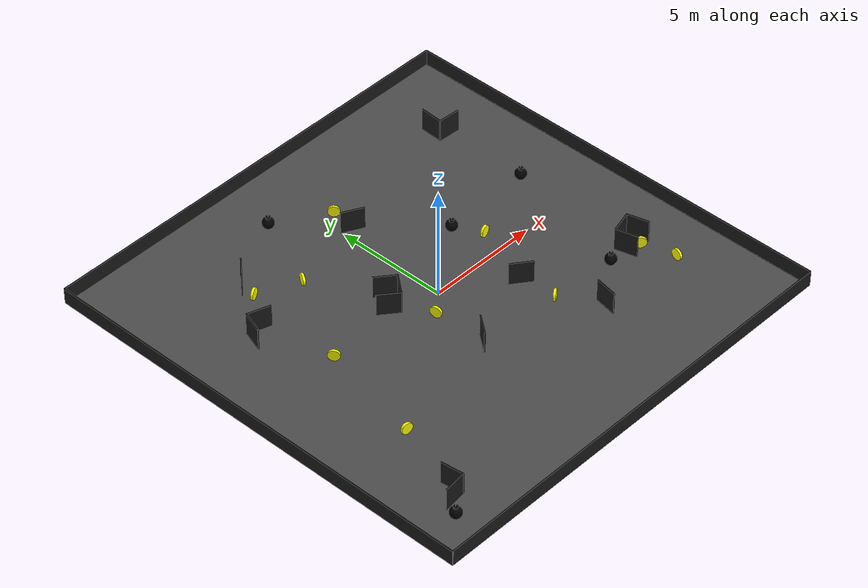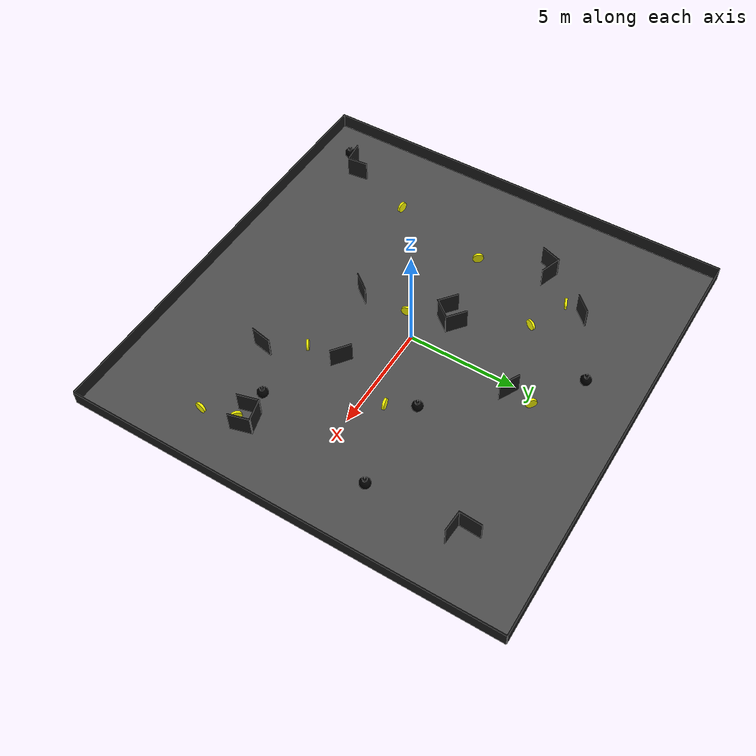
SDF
<sdf version="1.6">
 <world name="default">
  <model name="labrob_ground">
   <static>1</static>
   <link name="link">
    <collision name="collision">
     <geometry><plane><normal>0 0 1</normal><size>20 20</size></plane></geometry>
     <surface><contact><collide_bitmask>2</collide_bitmask></contact></surface>
    </collision>
    <visual name="visual">
     <cast_shadows>0</cast_shadows>
     <geometry><plane><normal>0 0 1</normal><size>20 20</size></plane></geometry>
     <material>
      <script>
       <uri>model://labrob_ground/materials/scripts/</uri>
       <uri>model://labrob_ground/materials/textures/</uri>
       <name>Labrob/AsphaltGround</name>
      </script>
     </material>
    </visual>
   </link>
  </model>
  <light name="sun" type="directional">
   <pose>0 0 10 0 -0 0</pose>
   <diffuse>0.8 0.8 0.8 1</diffuse>
   <specular>0.1 0.1 0.1 1</specular>
   <attenuation>
    <range>1000</range>
    <constant>0.9</constant>
    <linear>0.01</linear>
    <quadratic>0.001</quadratic>
   </attenuation>
   <direction>-0.5 0.5 -1</direction>
  </light>
  <model name="borders">
   <static>1</static>
   <link name="chassis_pos_x">
    <pose>10 0 0.35 0 -0 1.57079</pose>
    <collision name="collision_pos_x"><geometry><box><size>20 0.05 0.7</size></box></geometry></collision>
    <visual name="visual">
     <geometry><box><size>20 0.05 0.7</size></box></geometry>
     <material>
      <ambient>0.1 0.1 0.1 1</ambient>
      <diffuse>0.1 0.1 0.1 1</diffuse>
      <specular>0.1 0.1 0.1 1</specular>
      <emissive>0 0 0 0</emissive>
     </material>
    </visual>
    <sensor name="contact_sensor_1" type="contact">
     <plugin name="my_contact_plugin" filename="libgazebo_ros_bumper.so">
      <bumperTopicName>border_bumper</bumperTopicName>
      <frameName>world</frameName>
     </plugin>
     <contact><collision>collision_pos_x</collision><topic>__default_topic__</topic></contact>
    </sensor>
   </link>
   <link name="chassis_neg_x">
    <pose>-10 0 0.35 0 -0 1.57079</pose>
    <collision name="collision_neg_x"><geometry><box><size>20 0.05 0.7</size></box></geometry></collision>
    <visual name="visual">
     <geometry><box><size>20 0.05 0.7</size></box></geometry>
     <material>
      <ambient>0.1 0.1 0.1 1</ambient>
      <diffuse>0.1 0.1 0.1 1</diffuse>
      <specular>0.1 0.1 0.1 1</specular>
      <emissive>0 0 0 0</emissive>
     </material>
    </visual>
    <sensor name="contact_sensor_2" type="contact">
     <plugin name="my_contact_plugin" filename="libgazebo_ros_bumper.so">
      <bumperTopicName>border_bumper</bumperTopicName>
      <frameName>world</frameName>
     </plugin>
     <contact><collision>collision_neg_x</collision><topic>__default_topic__</topic></contact>
    </sensor>
   </link>
   <link name="chassis_pos_y">
    <pose>0 10 0.35 0 -0 0</pose>
    <collision name="collision_pos_y"><geometry><box><size>20 0.05 0.7</size></box></geometry></collision>
    <visual name="visual">
     <geometry><box><size>20 0.05 0.7</size></box></geometry>
     <material>
      <ambient>0.1 0.1 0.1 1</ambient>
      <diffuse>0.1 0.1 0.1 1</diffuse>
      <specular>0.1 0.1 0.1 1</specular>
      <emissive>0 0 0 0</emissive>
     </material>
    </visual>
    <sensor name="contact_sensor_3" type="contact">
     <plugin name="my_contact_plugin" filename="libgazebo_ros_bumper.so">
      <bumperTopicName>border_bumper</bumperTopicName>
      <frameName>world</frameName>
     </plugin>
     <contact><collision>collision_pos_y</collision><topic>__default_topic__</topic></contact>
    </sensor>
   </link>
   <link name="chassis_neg_y">
    <pose>0 -10 0.35 0 -0 0</pose>
    <collision name="collision_neg_y"><geometry><box><size>20 0.05 0.7</size></box></geometry></collision>
    <visual name="visual">
     <geometry><box><size>20 0.05 0.7</size></box></geometry>
     <material>
      <ambient>0.1 0.1 0.1 1</ambient>
      <diffuse>0.1 0.1 0.1 1</diffuse>
      <specular>0.1 0.1 0.1 1</specular>
      <emissive>0 0 0 0</emissive>
     </material>
    </visual>
    <sensor name="contact_sensor_4" type="contact">
     <plugin name="my_contact_plugin" filename="libgazebo_ros_bumper.so">
      <bumperTopicName>border_bumper</bumperTopicName>
      <frameName>world</frameName>
     </plugin>
     <contact><collision>collision_neg_y</collision><topic>__default_topic__</topic></contact>
    </sensor>
   </link>
  </model>
  <gravity>0 0 -9.8</gravity>
  <magnetic_field>6e-06 2.3e-05 -4.2e-05</magnetic_field>
  <atmosphere type="adiabatic"/>
  <physics name="default_physics" default="0" type="ode">
   <max_step_size>0.001</max_step_size>
   <real_time_factor>1</real_time_factor>
   <real_time_update_rate>1000</real_time_update_rate>
  </physics>
  <scene><ambient>0.4 0.4 0.4 1</ambient><background>0.7 0.7 0.7 1</background><shadows>1</shadows></scene>
  <spherical_coordinates>
   <surface_model>EARTH_WGS84</surface_model>
   <latitude_deg>0</latitude_deg>
   <longitude_deg>0</longitude_deg>
   <elevation>0</elevation>
   <heading_deg>0</heading_deg>
  </spherical_coordinates>
  <model name="coin_0">
   <link name="chassis">
    <pose>0 0 0.26 0 -0 0</pose>
    <collision name="box_collision">
     <geometry><sphere><radius>0.25</radius></sphere></geometry>
     <surface>
      <contact><collide_bitmask>1</collide_bitmask><ode><min_depth>10</min_depth><kp>1</kp></ode></contact>
     </surface>
    </collision>
    <visual name="visual">
     <pose>0 0 0 0 1.57 0</pose>
     <geometry><cylinder><radius>0.25</radius><length>0.1</length></cylinder></geometry>
     <material>
      <ambient>1 1 0 1</ambient>
      <diffuse>1 1 0 1</diffuse>
      <specular>0.1 0.1 0.1 1</specular>
      <emissive>0 0 0 0</emissive>
     </material>
    </visual>
    <sensor name="contact_sensor_1" type="contact">
     <plugin name="my_contact_plugin" filename="libgazebo_ros_bumper.so">
      <bumperTopicName>coin_bumper</bumperTopicName>
      <frameName>world</frameName>
     </plugin>
     <contact><collision>box_collision</collision><topic>__default_topic__</topic></contact>
    </sensor>
    <inertial>
     <inertia><ixx>1</ixx><ixy>0</ixy><ixz>0</ixz><iyy>1</iyy><iyz>0</iyz><izz>1</izz></inertia>
     <mass>1</mass>
    </inertial>
   </link>
   <joint name="coin_hinge" type="revolute">
    <pose>0 0 0.26 0 -0 0</pose>
    <child>chassis</child>
    <parent>world</parent>
    <axis>
     <xyz>0 0 1</xyz>
     <use_parent_model_frame>1</use_parent_model_frame>
     <limit><lower>-1e+16</lower><upper>1e+16</upper></limit>
     <dynamics><spring_reference>0</spring_reference><spring_stiffness>0</spring_stiffness></dynamics>
    </axis>
   </joint>
   <pose>2.77872 -3.45118 0 0 0 -1.0037</pose>
  </model>
  <model name="coin_1">
   <link name="chassis">
    <pose>0 0 0.26 0 -0 0</pose>
    <collision name="box_collision">
     <geometry><sphere><radius>0.25</radius></sphere></geometry>
     <surface>
      <contact><collide_bitmask>1</collide_bitmask><ode><min_depth>10</min_depth><kp>1</kp></ode></contact>
     </surface>
    </collision>
    <visual name="visual">
     <pose>0 0 0 0 1.57 0</pose>
     <geometry><cylinder><radius>0.25</radius><length>0.1</length></cylinder></geometry>
     <material>
      <ambient>1 1 0 1</ambient>
      <diffuse>1 1 0 1</diffuse>
      <specular>0.1 0.1 0.1 1</specular>
      <emissive>0 0 0 0</emissive>
     </material>
    </visual>
    <sensor name="contact_sensor_1" type="contact">
     <plugin name="my_contact_plugin" filename="libgazebo_ros_bumper.so">
      <bumperTopicName>coin_bumper</bumperTopicName>
      <frameName>world</frameName>
     </plugin>
     <contact><collision>box_collision</collision><topic>__default_topic__</topic></contact>
    </sensor>
    <inertial>
     <inertia><ixx>1</ixx><ixy>0</ixy><ixz>0</ixz><iyy>1</iyy><iyz>0</iyz><izz>1</izz></inertia>
     <mass>1</mass>
    </inertial>
   </link>
   <joint name="coin_hinge" type="revolute">
    <pose>0 0 0.26 0 -0 0</pose>
    <child>chassis</child>
    <parent>world</parent>
    <axis>
     <xyz>0 0 1</xyz>
     <use_parent_model_frame>1</use_parent_model_frame>
     <limit><lower>-1e+16</lower><upper>1e+16</upper></limit>
     <dynamics><spring_reference>0</spring_reference><spring_stiffness>0</spring_stiffness></dynamics>
    </axis>
   </joint>
   <pose>7.6966 -5.34516 0 0 0 -0.137868</pose>
  </model>
  <model name="coin_2">
   <link name="chassis">
    <pose>0 0 0.26 0 -0 0</pose>
    <collision name="box_collision">
     <geometry><sphere><radius>0.25</radius></sphere></geometry>
     <surface>
      <contact><collide_bitmask>1</collide_bitmask><ode><min_depth>10</min_depth><kp>1</kp></ode></contact>
     </surface>
    </collision>
    <visual name="visual">
     <pose>0 0 0 0 1.57 0</pose>
     <geometry><cylinder><radius>0.25</radius><length>0.1</length></cylinder></geometry>
     <material>
      <ambient>1 1 0 1</ambient>
      <diffuse>1 1 0 1</diffuse>
      <specular>0.1 0.1 0.1 1</specular>
      <emissive>0 0 0 0</emissive>
     </material>
    </visual>
    <sensor name="contact_sensor_1" type="contact">
     <plugin name="my_contact_plugin" filename="libgazebo_ros_bumper.so">
      <bumperTopicName>coin_bumper</bumperTopicName>
      <frameName>world</frameName>
     </plugin>
     <contact><collision>box_collision</collision><topic>__default_topic__</topic></contact>
    </sensor>
    <inertial>
     <inertia><ixx>1</ixx><ixy>0</ixy><ixz>0</ixz><iyy>1</iyy><iyz>0</iyz><izz>1</izz></inertia>
     <mass>1</mass>
    </inertial>
   </link>
   <joint name="coin_hinge" type="revolute">
    <pose>0 0 0.26 0 -0 0</pose>
    <child>chassis</child>
    <parent>world</parent>
    <axis>
     <xyz>0 0 1</xyz>
     <use_parent_model_frame>1</use_parent_model_frame>
     <limit><lower>-1e+16</lower><upper>1e+16</upper></limit>
     <dynamics><spring_reference>0</spring_reference><spring_stiffness>0</spring_stiffness></dynamics>
    </axis>
   </joint>
   <pose>7.27959 -3.86505 0 0 0 -2.26493</pose>
  </model>
  <model name="coin_3">
   <link name="chassis">
    <pose>0 0 0.26 0 -0 0</pose>
    <collision name="box_collision">
     <geometry><sphere><radius>0.25</radius></sphere></geometry>
     <surface>
      <contact><collide_bitmask>1</collide_bitmask><ode><min_depth>10</min_depth><kp>1</kp></ode></contact>
     </surface>
    </collision>
    <visual name="visual">
     <pose>0 0 0 0 1.57 0</pose>
     <geometry><cylinder><radius>0.25</radius><length>0.1</length></cylinder></geometry>
     <material>
      <ambient>1 1 0 1</ambient>
      <diffuse>1 1 0 1</diffuse>
      <specular>0.1 0.1 0.1 1</specular>
      <emissive>0 0 0 0</emissive>
     </material>
    </visual>
    <sensor name="contact_sensor_1" type="contact">
     <plugin name="my_contact_plugin" filename="libgazebo_ros_bumper.so">
      <bumperTopicName>coin_bumper</bumperTopicName>
      <frameName>world</frameName>
     </plugin>
     <contact><collision>box_collision</collision><topic>__default_topic__</topic></contact>
    </sensor>
    <inertial>
     <inertia><ixx>1</ixx><ixy>0</ixy><ixz>0</ixz><iyy>1</iyy><iyz>0</iyz><izz>1</izz></inertia>
     <mass>1</mass>
    </inertial>
   </link>
   <joint name="coin_hinge" type="revolute">
    <pose>0 0 0.26 0 -0 0</pose>
    <child>chassis</child>
    <parent>world</parent>
    <axis>
     <xyz>0 0 1</xyz>
     <use_parent_model_frame>1</use_parent_model_frame>
     <limit><lower>-1e+16</lower><upper>1e+16</upper></limit>
     <dynamics><spring_reference>0</spring_reference><spring_stiffness>0</spring_stiffness></dynamics>
    </axis>
   </joint>
   <pose>-1.01313 -0.821169 0 0 0 -2.88155</pose>
  </model>
  <model name="coin_4">
   <link name="chassis">
    <pose>0 0 0.26 0 -0 0</pose>
    <collision name="box_collision">
     <geometry><sphere><radius>0.25</radius></sphere></geometry>
     <surface>
      <contact><collide_bitmask>1</collide_bitmask><ode><min_depth>10</min_depth><kp>1</kp></ode></contact>
     </surface>
    </collision>
    <visual name="visual">
     <pose>0 0 0 0 1.57 0</pose>
     <geometry><cylinder><radius>0.25</radius><length>0.1</length></cylinder></geometry>
     <material>
      <ambient>1 1 0 1</ambient>
      <diffuse>1 1 0 1</diffuse>
      <specular>0.1 0.1 0.1 1</specular>
      <emissive>0 0 0 0</emissive>
     </material>
    </visual>
    <sensor name="contact_sensor_1" type="contact">
     <plugin name="my_contact_plugin" filename="libgazebo_ros_bumper.so">
      <bumperTopicName>coin_bumper</bumperTopicName>
      <frameName>world</frameName>
     </plugin>
     <contact><collision>box_collision</collision><topic>__default_topic__</topic></contact>
    </sensor>
    <inertial>
     <inertia><ixx>1</ixx><ixy>0</ixy><ixz>0</ixz><iyy>1</iyy><iyz>0</iyz><izz>1</izz></inertia>
     <mass>1</mass>
    </inertial>
   </link>
   <joint name="coin_hinge" type="revolute">
    <pose>0 0 0.26 0 -0 0</pose>
    <child>chassis</child>
    <parent>world</parent>
    <axis>
     <xyz>0 0 1</xyz>
     <use_parent_model_frame>1</use_parent_model_frame>
     <limit><lower>-1e+16</lower><upper>1e+16</upper></limit>
     <dynamics><spring_reference>0</spring_reference><spring_stiffness>0</spring_stiffness></dynamics>
    </axis>
   </joint>
   <pose>-6.31845 -4.31786 0 0 -0 1.39664</pose>
  </model>
  <model name="coin_5">
   <link name="chassis">
    <pose>0 0 0.26 0 -0 0</pose>
    <collision name="box_collision">
     <geometry><sphere><radius>0.25</radius></sphere></geometry>
     <surface>
      <contact><collide_bitmask>1</collide_bitmask><ode><min_depth>10</min_depth><kp>1</kp></ode></contact>
     </surface>
    </collision>
    <visual name="visual">
     <pose>0 0 0 0 1.57 0</pose>
     <geometry><cylinder><radius>0.25</radius><length>0.1</length></cylinder></geometry>
     <material>
      <ambient>1 1 0 1</ambient>
      <diffuse>1 1 0 1</diffuse>
      <specular>0.1 0.1 0.1 1</specular>
      <emissive>0 0 0 0</emissive>
     </material>
    </visual>
    <sensor name="contact_sensor_1" type="contact">
     <plugin name="my_contact_plugin" filename="libgazebo_ros_bumper.so">
      <bumperTopicName>coin_bumper</bumperTopicName>
      <frameName>world</frameName>
     </plugin>
     <contact><collision>box_collision</collision><topic>__default_topic__</topic></contact>
    </sensor>
    <inertial>
     <inertia><ixx>1</ixx><ixy>0</ixy><ixz>0</ixz><iyy>1</iyy><iyz>0</iyz><izz>1</izz></inertia>
     <mass>1</mass>
    </inertial>
   </link>
   <joint name="coin_hinge" type="revolute">
    <pose>0 0 0.26 0 -0 0</pose>
    <child>chassis</child>
    <parent>world</parent>
    <axis>
     <xyz>0 0 1</xyz>
     <use_parent_model_frame>1</use_parent_model_frame>
     <limit><lower>-1e+16</lower><upper>1e+16</upper></limit>
     <dynamics><spring_reference>0</spring_reference><spring_stiffness>0</spring_stiffness></dynamics>
    </axis>
   </joint>
   <pose>-4.97691 4.92097 0 0 0 -1.14791</pose>
  </model>
  <model name="coin_6">
   <link name="chassis">
    <pose>0 0 0.26 0 -0 0</pose>
    <collision name="box_collision">
     <geometry><sphere><radius>0.25</radius></sphere></geometry>
     <surface>
      <contact><collide_bitmask>1</collide_bitmask><ode><min_depth>10</min_depth><kp>1</kp></ode></contact>
     </surface>
    </collision>
    <visual name="visual">
     <pose>0 0 0 0 1.57 0</pose>
     <geometry><cylinder><radius>0.25</radius><length>0.1</length></cylinder></geometry>
     <material>
      <ambient>1 1 0 1</ambient>
      <diffuse>1 1 0 1</diffuse>
      <specular>0.1 0.1 0.1 1</specular>
      <emissive>0 0 0 0</emissive>
     </material>
    </visual>
    <sensor name="contact_sensor_1" type="contact">
     <plugin name="my_contact_plugin" filename="libgazebo_ros_bumper.so">
      <bumperTopicName>coin_bumper</bumperTopicName>
      <frameName>world</frameName>
     </plugin>
     <contact><collision>box_collision</collision><topic>__default_topic__</topic></contact>
    </sensor>
    <inertial>
     <inertia><ixx>1</ixx><ixy>0</ixy><ixz>0</ixz><iyy>1</iyy><iyz>0</iyz><izz>1</izz></inertia>
     <mass>1</mass>
    </inertial>
   </link>
   <joint name="coin_hinge" type="revolute">
    <pose>0 0 0.26 0 -0 0</pose>
    <child>chassis</child>
    <parent>world</parent>
    <axis>
     <xyz>0 0 1</xyz>
     <use_parent_model_frame>1</use_parent_model_frame>
     <limit><lower>-1e+16</lower><upper>1e+16</upper></limit>
     <dynamics><spring_reference>0</spring_reference><spring_stiffness>0</spring_stiffness></dynamics>
    </axis>
   </joint>
   <pose>-3.12605 4.15649 0 0 0 -0.482308</pose>
  </model>
  <model name="coin_7">
   <link name="chassis">
    <pose>0 0 0.26 0 -0 0</pose>
    <collision name="box_collision">
     <geometry><sphere><radius>0.25</radius></sphere></geometry>
     <surface>
      <contact><collide_bitmask>1</collide_bitmask><ode><min_depth>10</min_depth><kp>1</kp></ode></contact>
     </surface>
    </collision>
    <visual name="visual">
     <pose>0 0 0 0 1.57 0</pose>
     <geometry><cylinder><radius>0.25</radius><length>0.1</length></cylinder></geometry>
     <material>
      <ambient>1 1 0 1</ambient>
      <diffuse>1 1 0 1</diffuse>
      <specular>0.1 0.1 0.1 1</specular>
      <emissive>0 0 0 0</emissive>
     </material>
    </visual>
    <sensor name="contact_sensor_1" type="contact">
     <plugin name="my_contact_plugin" filename="libgazebo_ros_bumper.so">
      <bumperTopicName>coin_bumper</bumperTopicName>
      <frameName>world</frameName>
     </plugin>
     <contact><collision>box_collision</collision><topic>__default_topic__</topic></contact>
    </sensor>
    <inertial>
     <inertia><ixx>1</ixx><ixy>0</ixy><ixz>0</ixz><iyy>1</iyy><iyz>0</iyz><izz>1</izz></inertia>
     <mass>1</mass>
    </inertial>
   </link>
   <joint name="coin_hinge" type="revolute">
    <pose>0 0 0.26 0 -0 0</pose>
    <child>chassis</child>
    <parent>world</parent>
    <axis>
     <xyz>0 0 1</xyz>
     <use_parent_model_frame>1</use_parent_model_frame>
     <limit><lower>-1e+16</lower><upper>1e+16</upper></limit>
     <dynamics><spring_reference>0</spring_reference><spring_stiffness>0</spring_stiffness></dynamics>
    </axis>
   </joint>
   <pose>-5.34639 0.324996 0 0 0 -2.4923</pose>
  </model>
  <model name="coin_8">
   <link name="chassis">
    <pose>0 0 0.26 0 -0 0</pose>
    <collision name="box_collision">
     <geometry><sphere><radius>0.25</radius></sphere></geometry>
     <surface>
      <contact><collide_bitmask>1</collide_bitmask><ode><min_depth>10</min_depth><kp>1</kp></ode></contact>
     </surface>
    </collision>
    <visual name="visual">
     <pose>0 0 0 0 1.57 0</pose>
     <geometry><cylinder><radius>0.25</radius><length>0.1</length></cylinder></geometry>
     <material>
      <ambient>1 1 0 1</ambient>
      <diffuse>1 1 0 1</diffuse>
      <specular>0.1 0.1 0.1 1</specular>
      <emissive>0 0 0 0</emissive>
     </material>
    </visual>
    <sensor name="contact_sensor_1" type="contact">
     <plugin name="my_contact_plugin" filename="libgazebo_ros_bumper.so">
      <bumperTopicName>coin_bumper</bumperTopicName>
      <frameName>world</frameName>
     </plugin>
     <contact><collision>box_collision</collision><topic>__default_topic__</topic></contact>
    </sensor>
    <inertial>
     <inertia><ixx>1</ixx><ixy>0</ixy><ixz>0</ixz><iyy>1</iyy><iyz>0</iyz><izz>1</izz></inertia>
     <mass>1</mass>
    </inertial>
   </link>
   <joint name="coin_hinge" type="revolute">
    <pose>0 0 0.26 0 -0 0</pose>
    <child>chassis</child>
    <parent>world</parent>
    <axis>
     <xyz>0 0 1</xyz>
     <use_parent_model_frame>1</use_parent_model_frame>
     <limit><lower>-1e+16</lower><upper>1e+16</upper></limit>
     <dynamics><spring_reference>0</spring_reference><spring_stiffness>0</spring_stiffness></dynamics>
    </axis>
   </joint>
   <pose>3.66217 0.972881 0 0 -0 1.78089</pose>
  </model>
  <model name="bomb_1">
   <link name="chassis">
    <pose>0 0 0.25 0 -0 0</pose>
    <collision name="box_collision">
     <geometry><sphere><radius>0.25</radius></sphere></geometry>
     <surface>
      <contact><collide_bitmask>1</collide_bitmask><ode><min_depth>10</min_depth><kp>1</kp></ode></contact>
     </surface>
    </collision>
    <visual name="visual">
     <pose>0 0 0.2 0 -0 0</pose>
     <geometry><cylinder><radius>0.1</radius><length>0.2</length></cylinder></geometry>
     <material>
      <ambient>0 0 0 1</ambient>
      <diffuse>0 0 0 1</diffuse>
      <specular>0.1 0.1 0.1 1</specular>
      <emissive>0 0 0 0</emissive>
     </material>
    </visual>
    <visual name="visual2">
     <geometry><sphere><radius>0.25</radius></sphere></geometry>
     <material>
      <ambient>0 0 0 1</ambient>
      <diffuse>0 0 0 1</diffuse>
      <specular>0.1 0.1 0.1 1</specular>
      <emissive>0 0 0 0</emissive>
     </material>
    </visual>
    <visual name="visual3">
     <pose>0 0 0.3 0 -0 0</pose>
     <geometry><cylinder><radius>0.01</radius><length>0.2</length></cylinder></geometry>
     <material>
      <ambient>1 1 1 1</ambient>
      <diffuse>1 1 1 1</diffuse>
      <specular>0.1 0.1 0.1 1</specular>
      <emissive>0 0 0 0</emissive>
     </material>
    </visual>
    <sensor name="contact_sensor_1" type="contact">
     <plugin name="my_contact_plugin" filename="libgazebo_ros_bumper.so">
      <bumperTopicName>bomb_bumper</bumperTopicName>
      <frameName>world</frameName>
     </plugin>
     <contact><collision>box_collision</collision><topic>__default_topic__</topic></contact>
    </sensor>
    <inertial>
     <inertia><ixx>1</ixx><ixy>0</ixy><ixz>0</ixz><iyy>1</iyy><iyz>0</iyz><izz>1</izz></inertia>
     <mass>1</mass>
    </inertial>
   </link>
   <joint name="bomb_hinge" type="revolute">
    <pose>0 0 0.2 0 -0 0</pose>
    <child>chassis</child>
    <parent>world</parent>
    <axis>
     <xyz>0 0 0</xyz>
     <use_parent_model_frame>1</use_parent_model_frame>
     <limit><lower>-1e+16</lower><upper>1e+16</upper></limit>
     <dynamics><spring_reference>0</spring_reference><spring_stiffness>0</spring_stiffness></dynamics>
    </axis>
   </joint>
   <pose>-8.21329 -8.49243 0 0 -0 0</pose>
  </model>
  <model name="bomb_2">
   <link name="chassis">
    <pose>0 0 0.25 0 -0 0</pose>
    <collision name="box_collision">
     <geometry><sphere><radius>0.25</radius></sphere></geometry>
     <surface>
      <contact><collide_bitmask>1</collide_bitmask><ode><min_depth>10</min_depth><kp>1</kp></ode></contact>
     </surface>
    </collision>
    <visual name="visual">
     <pose>0 0 0.2 0 -0 0</pose>
     <geometry><cylinder><radius>0.1</radius><length>0.2</length></cylinder></geometry>
     <material>
      <ambient>0 0 0 1</ambient>
      <diffuse>0 0 0 1</diffuse>
      <specular>0.1 0.1 0.1 1</specular>
      <emissive>0 0 0 0</emissive>
     </material>
    </visual>
    <visual name="visual2">
     <geometry><sphere><radius>0.25</radius></sphere></geometry>
     <material>
      <ambient>0 0 0 1</ambient>
      <diffuse>0 0 0 1</diffuse>
      <specular>0.1 0.1 0.1 1</specular>
      <emissive>0 0 0 0</emissive>
     </material>
    </visual>
    <visual name="visual3">
     <pose>0 0 0.3 0 -0 0</pose>
     <geometry><cylinder><radius>0.01</radius><length>0.2</length></cylinder></geometry>
     <material>
      <ambient>1 1 1 1</ambient>
      <diffuse>1 1 1 1</diffuse>
      <specular>0.1 0.1 0.1 1</specular>
      <emissive>0 0 0 0</emissive>
     </material>
    </visual>
    <sensor name="contact_sensor_1" type="contact">
     <plugin name="my_contact_plugin" filename="libgazebo_ros_bumper.so">
      <bumperTopicName>bomb_bumper</bumperTopicName>
      <frameName>world</frameName>
     </plugin>
     <contact><collision>box_collision</collision><topic>__default_topic__</topic></contact>
    </sensor>
    <inertial>
     <inertia><ixx>1</ixx><ixy>0</ixy><ixz>0</ixz><iyy>1</iyy><iyz>0</iyz><izz>1</izz></inertia>
     <mass>1</mass>
    </inertial>
   </link>
   <joint name="bomb_hinge" type="revolute">
    <pose>0 0 0.2 0 -0 0</pose>
    <child>chassis</child>
    <parent>world</parent>
    <axis>
     <xyz>0 0 0</xyz>
     <use_parent_model_frame>1</use_parent_model_frame>
     <limit><lower>-1e+16</lower><upper>1e+16</upper></limit>
     <dynamics><spring_reference>0</spring_reference><spring_stiffness>0</spring_stiffness></dynamics>
    </axis>
   </joint>
   <pose>-1.69422 7.46276 0 0 -0 0</pose>
  </model>
  <model name="bomb_3">
   <link name="chassis">
    <pose>0 0 0.25 0 -0 0</pose>
    <collision name="box_collision">
     <geometry><sphere><radius>0.25</radius></sphere></geometry>
     <surface>
      <contact><collide_bitmask>1</collide_bitmask><ode><min_depth>10</min_depth><kp>1</kp></ode></contact>
     </surface>
    </collision>
    <visual name="visual">
     <pose>0 0 0.2 0 -0 0</pose>
     <geometry><cylinder><radius>0.1</radius><length>0.2</length></cylinder></geometry>
     <material>
      <ambient>0 0 0 1</ambient>
      <diffuse>0 0 0 1</diffuse>
      <specular>0.1 0.1 0.1 1</specular>
      <emissive>0 0 0 0</emissive>
     </material>
    </visual>
    <visual name="visual2">
     <geometry><sphere><radius>0.25</radius></sphere></geometry>
     <material>
      <ambient>0 0 0 1</ambient>
      <diffuse>0 0 0 1</diffuse>
      <specular>0.1 0.1 0.1 1</specular>
      <emissive>0 0 0 0</emissive>
     </material>
    </visual>
    <visual name="visual3">
     <pose>0 0 0.3 0 -0 0</pose>
     <geometry><cylinder><radius>0.01</radius><length>0.2</length></cylinder></geometry>
     <material>
      <ambient>1 1 1 1</ambient>
      <diffuse>1 1 1 1</diffuse>
      <specular>0.1 0.1 0.1 1</specular>
      <emissive>0 0 0 0</emissive>
     </material>
    </visual>
    <sensor name="contact_sensor_1" type="contact">
     <plugin name="my_contact_plugin" filename="libgazebo_ros_bumper.so">
      <bumperTopicName>bomb_bumper</bumperTopicName>
      <frameName>world</frameName>
     </plugin>
     <contact><collision>box_collision</collision><topic>__default_topic__</topic></contact>
    </sensor>
    <inertial>
     <inertia><ixx>1</ixx><ixy>0</ixy><ixz>0</ixz><iyy>1</iyy><iyz>0</iyz><izz>1</izz></inertia>
     <mass>1</mass>
    </inertial>
   </link>
   <joint name="bomb_hinge" type="revolute">
    <pose>0 0 0.2 0 -0 0</pose>
    <child>chassis</child>
    <parent>world</parent>
    <axis>
     <xyz>0 0 0</xyz>
     <use_parent_model_frame>1</use_parent_model_frame>
     <limit><lower>-1e+16</lower><upper>1e+16</upper></limit>
     <dynamics><spring_reference>0</spring_reference><spring_stiffness>0</spring_stiffness></dynamics>
    </axis>
   </joint>
   <pose>3.05113 2.15464 0 0 -0 0</pose>
  </model>
  <model name="wall_1_0">
   <static>1</static>
   <link name="chassis">
    <pose>0 0 0.5 0 -0 0</pose>
    <collision name="barrier_collision"><geometry><box><size>1 0.05 1</size></box></geometry></collision>
    <visual name="visual">
     <geometry><box><size>1 0.05 1</size></box></geometry>
     <material>
      <ambient>0.1 0.1 0.1 1</ambient>
      <diffuse>0.1 0.1 0.1 1</diffuse>
      <specular>0.1 0.1 0.1 1</specular>
      <emissive>0 0 0 0</emissive>
     </material>
    </visual>
    <sensor name="contact_sensor_1" type="contact">
     <plugin name="my_contact_plugin" filename="libgazebo_ros_bumper.so">
      <bumperTopicName>obstacle_bumper</bumperTopicName>
      <frameName>world</frameName>
     </plugin>
     <contact><collision>barrier_collision</collision><topic>__default_topic__</topic></contact>
    </sensor>
   </link>
   <pose>3.79005 -5.09205 0 0 0 -1.76104</pose>
  </model>
  <model name="wall_1_1">
   <static>1</static>
   <link name="chassis">
    <pose>0 0 0.5 0 -0 0</pose>
    <collision name="barrier_collision"><geometry><box><size>1 0.05 1</size></box></geometry></collision>
    <visual name="visual">
     <geometry><box><size>1 0.05 1</size></box></geometry>
     <material>
      <ambient>0.1 0.1 0.1 1</ambient>
      <diffuse>0.1 0.1 0.1 1</diffuse>
      <specular>0.1 0.1 0.1 1</specular>
      <emissive>0 0 0 0</emissive>
     </material>
    </visual>
    <sensor name="contact_sensor_1" type="contact">
     <plugin name="my_contact_plugin" filename="libgazebo_ros_bumper.so">
      <bumperTopicName>obstacle_bumper</bumperTopicName>
      <frameName>world</frameName>
     </plugin>
     <contact><collision>barrier_collision</collision><topic>__default_topic__</topic></contact>
    </sensor>
   </link>
   <pose>2.63147 -1.84331 0 0 0 -0.646003</pose>
  </model>
  <model name="wall_1_2">
   <static>1</static>
   <link name="chassis">
    <pose>0 0 0.5 0 -0 0</pose>
    <collision name="barrier_collision"><geometry><box><size>1 0.05 1</size></box></geometry></collision>
    <visual name="visual">
     <geometry><box><size>1 0.05 1</size></box></geometry>
     <material>
      <ambient>0.1 0.1 0.1 1</ambient>
      <diffuse>0.1 0.1 0.1 1</diffuse>
      <specular>0.1 0.1 0.1 1</specular>
      <emissive>0 0 0 0</emissive>
     </material>
    </visual>
    <sensor name="contact_sensor_1" type="contact">
     <plugin name="my_contact_plugin" filename="libgazebo_ros_bumper.so">
      <bumperTopicName>obstacle_bumper</bumperTopicName>
      <frameName>world</frameName>
     </plugin>
     <contact><collision>barrier_collision</collision><topic>__default_topic__</topic></contact>
    </sensor>
   </link>
   <pose>-0.904639 -3.08685 0 0 0 -2.23008</pose>
  </model>
  <model name="wall_2_0">
   <static>1</static>
   <link name="chassis">
    <pose>0 0 0.5 0 -0 0</pose>
    <collision name="barrier_collision"><geometry><box><size>1 0.05 1</size></box></geometry></collision>
    <visual name="visual">
     <geometry><box><size>1 0.05 1</size></box></geometry>
     <material>
      <ambient>0.1 0.1 0.1 1</ambient>
      <diffuse>0.1 0.1 0.1 1</diffuse>
      <specular>0.1 0.1 0.1 1</specular>
      <emissive>0 0 0 0</emissive>
     </material>
    </visual>
    <collision name="barrier_collision2">
     <pose>-0.475 0.525 0 0 -0 1.57</pose>
     <geometry><box><size>1 0.05 1</size></box></geometry>
    </collision>
    <visual name="visual2">
     <pose>-0.475 0.525 0 0 -0 1.57</pose>
     <geometry><box><size>1 0.05 1</size></box></geometry>
     <material>
      <ambient>0.1 0.1 0.1 1</ambient>
      <diffuse>0.1 0.1 0.1 1</diffuse>
      <specular>0.1 0.1 0.1 1</specular>
      <emissive>0 0 0 0</emissive>
     </material>
    </visual>
    <sensor name="contact_sensor_1" type="contact">
     <plugin name="my_contact_plugin" filename="libgazebo_ros_bumper.so">
      <bumperTopicName>obstacle_bumper</bumperTopicName>
      <frameName>world</frameName>
     </plugin>
     <contact><collision>barrier_collision</collision><topic>__default_topic__</topic></contact>
    </sensor>
    <sensor name="contact_sensor_2" type="contact">
     <plugin name="my_contact_plugin" filename="libgazebo_ros_bumper.so">
      <bumperTopicName>obstacle_bumper</bumperTopicName>
      <frameName>world</frameName>
     </plugin>
     <contact><collision>barrier_collision2</collision><topic>__default_topic__</topic></contact>
    </sensor>
   </link>
   <pose>-7.22309 -7.40471 0 0 -0 1.69029</pose>
  </model>
  <model name="wall_3_0">
   <static>1</static>
   <link name="chassis">
    <pose>0 0 0.5 0 -0 0</pose>
    <collision name="collision"><geometry><box><size>1 0.05 1</size></box></geometry></collision>
    <visual name="visual">
     <geometry><box><size>1 0.05 1</size></box></geometry>
     <material>
      <ambient>0.1 0.1 0.1 1</ambient>
      <diffuse>0.1 0.1 0.1 1</diffuse>
      <specular>0.1 0.1 0.1 1</specular>
      <emissive>0 0 0 0</emissive>
     </material>
    </visual>
    <collision name="collision2">
     <pose>-0.475 0.525 0 0 -0 1.57</pose>
     <geometry><box><size>1 0.05 1</size></box></geometry>
    </collision>
    <visual name="visual2">
     <pose>-0.475 0.525 0 0 -0 1.57</pose>
     <geometry><box><size>1 0.05 1</size></box></geometry>
     <material>
      <ambient>0.1 0.1 0.1 1</ambient>
      <diffuse>0.1 0.1 0.1 1</diffuse>
      <specular>0.1 0.1 0.1 1</specular>
      <emissive>0 0 0 0</emissive>
     </material>
    </visual>
    <collision name="collision3">
     <pose>0 1 0 0 -0 0</pose>
     <geometry><box><size>1 0.05 1</size></box></geometry>
    </collision>
    <visual name="visual3">
     <pose>0 1 0 0 -0 0</pose>
     <geometry><box><size>1 0.05 1</size></box></geometry>
     <material>
      <ambient>0.1 0.1 0.1 1</ambient>
      <diffuse>0.1 0.1 0.1 1</diffuse>
      <specular>0.1 0.1 0.1 1</specular>
      <emissive>0 0 0 0</emissive>
     </material>
    </visual>
    <sensor name="contact_sensor_1" type="contact">
     <plugin name="my_contact_plugin" filename="libgazebo_ros_bumper.so">
      <bumperTopicName>obstacle_bumper</bumperTopicName>
      <frameName>world</frameName>
     </plugin>
     <contact><collision>collision</collision><topic>__default_topic__</topic></contact>
    </sensor>
    <sensor name="contact_sensor_2" type="contact">
     <plugin name="my_contact_plugin" filename="libgazebo_ros_bumper.so">
      <bumperTopicName>obstacle_bumper</bumperTopicName>
      <frameName>world</frameName>
     </plugin>
     <contact><collision>collision2</collision><topic>__default_topic__</topic></contact>
    </sensor>
    <sensor name="contact_sensor_3" type="contact">
     <plugin name="my_contact_plugin" filename="libgazebo_ros_bumper.so">
      <bumperTopicName>obstacle_bumper</bumperTopicName>
      <frameName>world</frameName>
     </plugin>
     <contact><collision>collision3</collision><topic>__default_topic__</topic></contact>
    </sensor>
   </link>
   <pose>-1.4457 1.39996 0 0 -0 2.46904</pose>
  </model>
  <model name="wall_1_3">
   <static>1</static>
   <link name="chassis">
    <pose>0 0 0.5 0 -0 0</pose>
    <collision name="barrier_collision"><geometry><box><size>1 0.05 1</size></box></geometry></collision>
    <visual name="visual">
     <geometry><box><size>1 0.05 1</size></box></geometry>
     <material>
      <ambient>0.1 0.1 0.1 1</ambient>
      <diffuse>0.1 0.1 0.1 1</diffuse>
      <specular>0.1 0.1 0.1 1</specular>
      <emissive>0 0 0 0</emissive>
     </material>
    </visual>
    <sensor name="contact_sensor_1" type="contact">
     <plugin name="my_contact_plugin" filename="libgazebo_ros_bumper.so">
      <bumperTopicName>obstacle_bumper</bumperTopicName>
      <frameName>world</frameName>
     </plugin>
     <contact><collision>barrier_collision</collision><topic>__default_topic__</topic></contact>
    </sensor>
   </link>
   <pose>-4.8104 5.75511 0 0 0 -2.32741</pose>
  </model>
  <model name="wall_2_1">
   <static>1</static>
   <link name="chassis">
    <pose>0 0 0.5 0 -0 0</pose>
    <collision name="barrier_collision"><geometry><box><size>1 0.05 1</size></box></geometry></collision>
    <visual name="visual">
     <geometry><box><size>1 0.05 1</size></box></geometry>
     <material>
      <ambient>0.1 0.1 0.1 1</ambient>
      <diffuse>0.1 0.1 0.1 1</diffuse>
      <specular>0.1 0.1 0.1 1</specular>
      <emissive>0 0 0 0</emissive>
     </material>
    </visual>
    <collision name="barrier_collision2">
     <pose>-0.475 0.525 0 0 -0 1.57</pose>
     <geometry><box><size>1 0.05 1</size></box></geometry>
    </collision>
    <visual name="visual2">
     <pose>-0.475 0.525 0 0 -0 1.57</pose>
     <geometry><box><size>1 0.05 1</size></box></geometry>
     <material>
      <ambient>0.1 0.1 0.1 1</ambient>
      <diffuse>0.1 0.1 0.1 1</diffuse>
      <specular>0.1 0.1 0.1 1</specular>
      <emissive>0 0 0 0</emissive>
     </material>
    </visual>
    <sensor name="contact_sensor_1" type="contact">
     <plugin name="my_contact_plugin" filename="libgazebo_ros_bumper.so">
      <bumperTopicName>obstacle_bumper</bumperTopicName>
      <frameName>world</frameName>
     </plugin>
     <contact><collision>barrier_collision</collision><topic>__default_topic__</topic></contact>
    </sensor>
    <sensor name="contact_sensor_2" type="contact">
     <plugin name="my_contact_plugin" filename="libgazebo_ros_bumper.so">
      <bumperTopicName>obstacle_bumper</bumperTopicName>
      <frameName>world</frameName>
     </plugin>
     <contact><collision>barrier_collision2</collision><topic>__default_topic__</topic></contact>
    </sensor>
   </link>
   <pose>-6.67562 3.273 0 0 0 -1.89378</pose>
  </model>
  <model name="wall_3_1">
   <static>1</static>
   <link name="chassis">
    <pose>0 0 0.5 0 -0 0</pose>
    <collision name="collision"><geometry><box><size>1 0.05 1</size></box></geometry></collision>
    <visual name="visual">
     <geometry><box><size>1 0.05 1</size></box></geometry>
     <material>
      <ambient>0.1 0.1 0.1 1</ambient>
      <diffuse>0.1 0.1 0.1 1</diffuse>
      <specular>0.1 0.1 0.1 1</specular>
      <emissive>0 0 0 0</emissive>
     </material>
    </visual>
    <collision name="collision2">
     <pose>-0.475 0.525 0 0 -0 1.57</pose>
     <geometry><box><size>1 0.05 1</size></box></geometry>
    </collision>
    <visual name="visual2">
     <pose>-0.475 0.525 0 0 -0 1.57</pose>
     <geometry><box><size>1 0.05 1</size></box></geometry>
     <material>
      <ambient>0.1 0.1 0.1 1</ambient>
      <diffuse>0.1 0.1 0.1 1</diffuse>
      <specular>0.1 0.1 0.1 1</specular>
      <emissive>0 0 0 0</emissive>
     </material>
    </visual>
    <collision name="collision3">
     <pose>0 1 0 0 -0 0</pose>
     <geometry><box><size>1 0.05 1</size></box></geometry>
    </collision>
    <visual name="visual3">
     <pose>0 1 0 0 -0 0</pose>
     <geometry><box><size>1 0.05 1</size></box></geometry>
     <material>
      <ambient>0.1 0.1 0.1 1</ambient>
      <diffuse>0.1 0.1 0.1 1</diffuse>
      <specular>0.1 0.1 0.1 1</specular>
      <emissive>0 0 0 0</emissive>
     </material>
    </visual>
    <sensor name="contact_sensor_1" type="contact">
     <plugin name="my_contact_plugin" filename="libgazebo_ros_bumper.so">
      <bumperTopicName>obstacle_bumper</bumperTopicName>
      <frameName>world</frameName>
     </plugin>
     <contact><collision>collision</collision><topic>__default_topic__</topic></contact>
    </sensor>
    <sensor name="contact_sensor_2" type="contact">
     <plugin name="my_contact_plugin" filename="libgazebo_ros_bumper.so">
      <bumperTopicName>obstacle_bumper</bumperTopicName>
      <frameName>world</frameName>
     </plugin>
     <contact><collision>collision2</collision><topic>__default_topic__</topic></contact>
    </sensor>
    <sensor name="contact_sensor_3" type="contact">
     <plugin name="my_contact_plugin" filename="libgazebo_ros_bumper.so">
      <bumperTopicName>obstacle_bumper</bumperTopicName>
      <frameName>world</frameName>
     </plugin>
     <contact><collision>collision3</collision><topic>__default_topic__</topic></contact>
    </sensor>
   </link>
   <pose>6.66488 -3.64618 0 0 0 -1.30971</pose>
  </model>
  <model name="wall_1_4">
   <static>1</static>
   <link name="chassis">
    <pose>0 0 0.5 0 -0 0</pose>
    <collision name="barrier_collision"><geometry><box><size>1 0.05 1</size></box></geometry></collision>
    <visual name="visual">
     <geometry><box><size>1 0.05 1</size></box></geometry>
     <material>
      <ambient>0.1 0.1 0.1 1</ambient>
      <diffuse>0.1 0.1 0.1 1</diffuse>
      <specular>0.1 0.1 0.1 1</specular>
      <emissive>0 0 0 0</emissive>
     </material>
    </visual>
    <sensor name="contact_sensor_1" type="contact">
     <plugin name="my_contact_plugin" filename="libgazebo_ros_bumper.so">
      <bumperTopicName>obstacle_bumper</bumperTopicName>
      <frameName>world</frameName>
     </plugin>
     <contact><collision>barrier_collision</collision><topic>__default_topic__</topic></contact>
    </sensor>
   </link>
   <pose>0.453442 4.97414 0 0 0 -0.477856</pose>
  </model>
  <model name="wall_2_2">
   <static>1</static>
   <link name="chassis">
    <pose>0 0 0.5 0 -0 0</pose>
    <collision name="barrier_collision"><geometry><box><size>1 0.05 1</size></box></geometry></collision>
    <visual name="visual">
     <geometry><box><size>1 0.05 1</size></box></geometry>
     <material>
      <ambient>0.1 0.1 0.1 1</ambient>
      <diffuse>0.1 0.1 0.1 1</diffuse>
      <specular>0.1 0.1 0.1 1</specular>
      <emissive>0 0 0 0</emissive>
     </material>
    </visual>
    <collision name="barrier_collision2">
     <pose>-0.475 0.525 0 0 -0 1.57</pose>
     <geometry><box><size>1 0.05 1</size></box></geometry>
    </collision>
    <visual name="visual2">
     <pose>-0.475 0.525 0 0 -0 1.57</pose>
     <geometry><box><size>1 0.05 1</size></box></geometry>
     <material>
      <ambient>0.1 0.1 0.1 1</ambient>
      <diffuse>0.1 0.1 0.1 1</diffuse>
      <specular>0.1 0.1 0.1 1</specular>
      <emissive>0 0 0 0</emissive>
     </material>
    </visual>
    <sensor name="contact_sensor_1" type="contact">
     <plugin name="my_contact_plugin" filename="libgazebo_ros_bumper.so">
      <bumperTopicName>obstacle_bumper</bumperTopicName>
      <frameName>world</frameName>
     </plugin>
     <contact><collision>barrier_collision</collision><topic>__default_topic__</topic></contact>
    </sensor>
    <sensor name="contact_sensor_2" type="contact">
     <plugin name="my_contact_plugin" filename="libgazebo_ros_bumper.so">
      <bumperTopicName>obstacle_bumper</bumperTopicName>
      <frameName>world</frameName>
     </plugin>
     <contact><collision>barrier_collision2</collision><topic>__default_topic__</topic></contact>
    </sensor>
   </link>
   <pose>7.2396 6.18754 0 0 0 -0.055523</pose>
  </model>
  <model name="coin_9">
   <link name="chassis">
    <pose>0 0 0.26 0 -0 0</pose>
    <collision name="box_collision">
     <geometry><sphere><radius>0.25</radius></sphere></geometry>
     <surface>
      <contact><collide_bitmask>1</collide_bitmask><ode><min_depth>10</min_depth><kp>1</kp></ode></contact>
     </surface>
    </collision>
    <visual name="visual">
     <pose>0 0 0 0 1.57 0</pose>
     <geometry><cylinder><radius>0.25</radius><length>0.1</length></cylinder></geometry>
     <material>
      <ambient>1 1 0 1</ambient>
      <diffuse>1 1 0 1</diffuse>
      <specular>0.1 0.1 0.1 1</specular>
      <emissive>0 0 0 0</emissive>
     </material>
    </visual>
    <sensor name="contact_sensor_1" type="contact">
     <plugin name="my_contact_plugin" filename="libgazebo_ros_bumper.so">
      <bumperTopicName>coin_bumper</bumperTopicName>
      <frameName>world</frameName>
     </plugin>
     <contact><collision>box_collision</collision><topic>__default_topic__</topic></contact>
    </sensor>
    <inertial>
     <inertia><ixx>1</ixx><ixy>0</ixy><ixz>0</ixz><iyy>1</iyy><iyz>0</iyz><izz>1</izz></inertia>
     <mass>1</mass>
    </inertial>
   </link>
   <joint name="coin_hinge" type="revolute">
    <pose>0 0 0.26 0 -0 0</pose>
    <child>chassis</child>
    <parent>world</parent>
    <axis>
     <xyz>0 0 1</xyz>
     <use_parent_model_frame>1</use_parent_model_frame>
     <limit><lower>-1e+16</lower><upper>1e+16</upper></limit>
     <dynamics><spring_reference>0</spring_reference><spring_stiffness>0</spring_stiffness></dynamics>
    </axis>
   </joint>
   <pose>0.528364 6.06303 0 0 0 -2.39108</pose>
  </model>
  <model name="bomb_0">
   <link name="chassis">
    <pose>0 0 0.25 0 -0 0</pose>
    <collision name="box_collision">
     <geometry><sphere><radius>0.25</radius></sphere></geometry>
     <surface>
      <contact><collide_bitmask>1</collide_bitmask><ode><min_depth>10</min_depth><kp>1</kp></ode></contact>
     </surface>
    </collision>
    <visual name="visual">
     <pose>0 0 0.2 0 -0 0</pose>
     <geometry><cylinder><radius>0.1</radius><length>0.2</length></cylinder></geometry>
     <material>
      <ambient>0 0 0 1</ambient>
      <diffuse>0 0 0 1</diffuse>
      <specular>0.1 0.1 0.1 1</specular>
      <emissive>0 0 0 0</emissive>
     </material>
    </visual>
    <visual name="visual2">
     <geometry><sphere><radius>0.25</radius></sphere></geometry>
     <material>
      <ambient>0 0 0 1</ambient>
      <diffuse>0 0 0 1</diffuse>
      <specular>0.1 0.1 0.1 1</specular>
      <emissive>0 0 0 0</emissive>
     </material>
    </visual>
    <visual name="visual3">
     <pose>0 0 0.3 0 -0 0</pose>
     <geometry><cylinder><radius>0.01</radius><length>0.2</length></cylinder></geometry>
     <material>
      <ambient>1 1 1 1</ambient>
      <diffuse>1 1 1 1</diffuse>
      <specular>0.1 0.1 0.1 1</specular>
      <emissive>0 0 0 0</emissive>
     </material>
    </visual>
    <sensor name="contact_sensor_1" type="contact">
     <plugin name="my_contact_plugin" filename="libgazebo_ros_bumper.so">
      <bumperTopicName>bomb_bumper</bumperTopicName>
      <frameName>world</frameName>
     </plugin>
     <contact><collision>box_collision</collision><topic>__default_topic__</topic></contact>
    </sensor>
    <inertial>
     <inertia><ixx>1</ixx><ixy>0</ixy><ixz>0</ixz><iyy>1</iyy><iyz>0</iyz><izz>1</izz></inertia>
     <mass>1</mass>
    </inertial>
   </link>
   <joint name="bomb_hinge" type="revolute">
    <pose>0 0 0.2 0 -0 0</pose>
    <child>chassis</child>
    <parent>world</parent>
    <axis>
     <xyz>0 0 0</xyz>
     <use_parent_model_frame>1</use_parent_model_frame>
     <limit><lower>-1e+16</lower><upper>1e+16</upper></limit>
     <dynamics><spring_reference>0</spring_reference><spring_stiffness>0</spring_stiffness></dynamics>
    </axis>
   </joint>
   <pose>5.76926 -3.64787 0 -0.000548 0 0</pose>
  </model>
  <model name="bomb_4">
   <link name="chassis">
    <pose>0 0 0.25 0 -0 0</pose>
    <collision name="box_collision">
     <geometry><sphere><radius>0.25</radius></sphere></geometry>
     <surface>
      <contact><collide_bitmask>1</collide_bitmask><ode><min_depth>10</min_depth><kp>1</kp></ode></contact>
     </surface>
    </collision>
    <visual name="visual">
     <pose>0 0 0.2 0 -0 0</pose>
     <geometry><cylinder><radius>0.1</radius><length>0.2</length></cylinder></geometry>
     <material>
      <ambient>0 0 0 1</ambient>
      <diffuse>0 0 0 1</diffuse>
      <specular>0.1 0.1 0.1 1</specular>
      <emissive>0 0 0 0</emissive>
     </material>
    </visual>
    <visual name="visual2">
     <geometry><sphere><radius>0.25</radius></sphere></geometry>
     <material>
      <ambient>0 0 0 1</ambient>
      <diffuse>0 0 0 1</diffuse>
      <specular>0.1 0.1 0.1 1</specular>
      <emissive>0 0 0 0</emissive>
     </material>
    </visual>
    <visual name="visual3">
     <pose>0 0 0.3 0 -0 0</pose>
     <geometry><cylinder><radius>0.01</radius><length>0.2</length></cylinder></geometry>
     <material>
      <ambient>1 1 1 1</ambient>
      <diffuse>1 1 1 1</diffuse>
      <specular>0.1 0.1 0.1 1</specular>
      <emissive>0 0 0 0</emissive>
     </material>
    </visual>
    <sensor name="contact_sensor_1" type="contact">
     <plugin name="my_contact_plugin" filename="libgazebo_ros_bumper.so">
      <bumperTopicName>bomb_bumper</bumperTopicName>
      <frameName>world</frameName>
     </plugin>
     <contact><collision>box_collision</collision><topic>__default_topic__</topic></contact>
    </sensor>
    <inertial>
     <inertia><ixx>1</ixx><ixy>0</ixy><ixz>0</ixz><iyy>1</iyy><iyz>0</iyz><izz>1</izz></inertia>
     <mass>1</mass>
    </inertial>
   </link>
   <joint name="bomb_hinge" type="revolute">
    <pose>0 0 0.2 0 -0 0</pose>
    <child>chassis</child>
    <parent>world</parent>
    <axis>
     <xyz>0 0 0</xyz>
     <use_parent_model_frame>1</use_parent_model_frame>
     <limit><lower>-1e+16</lower><upper>1e+16</upper></limit>
     <dynamics><spring_reference>0</spring_reference><spring_stiffness>0</spring_stiffness></dynamics>
    </axis>
   </joint>
   <pose>7.20025 2.28292 0 0 -0 0</pose>
  </model>
 </world>
</sdf>
